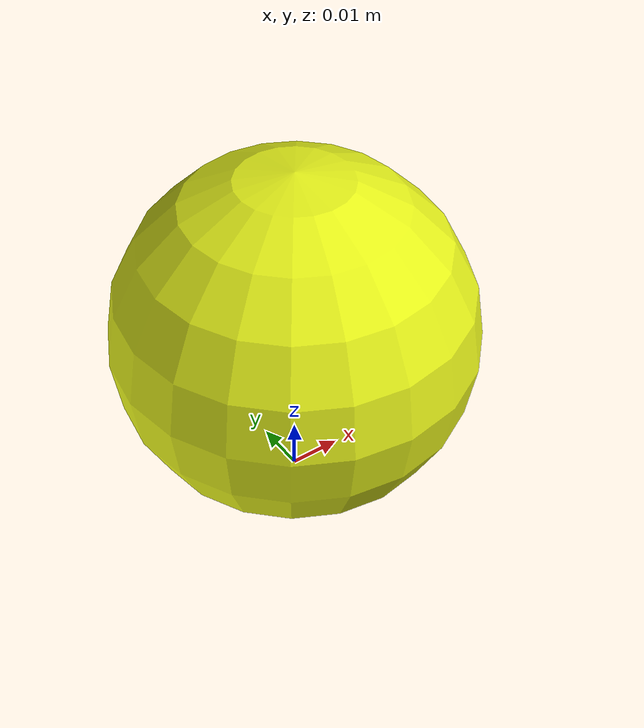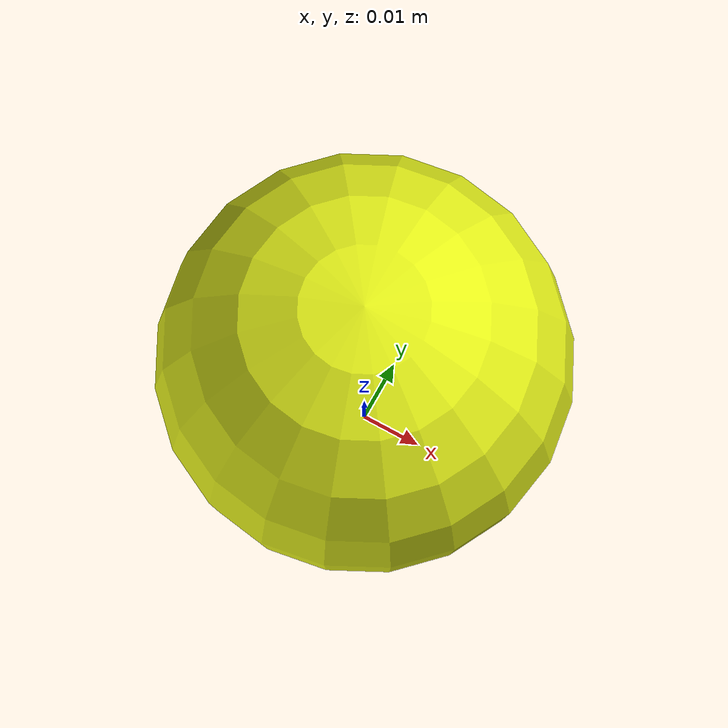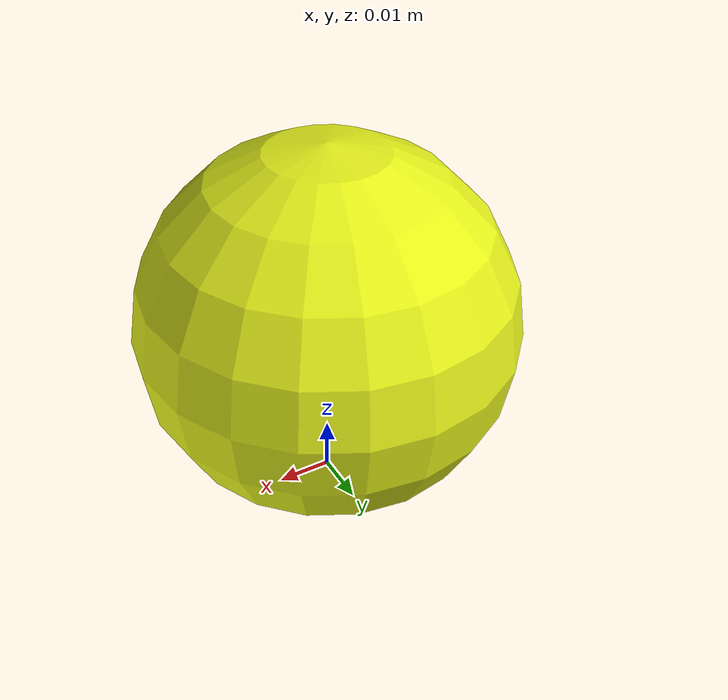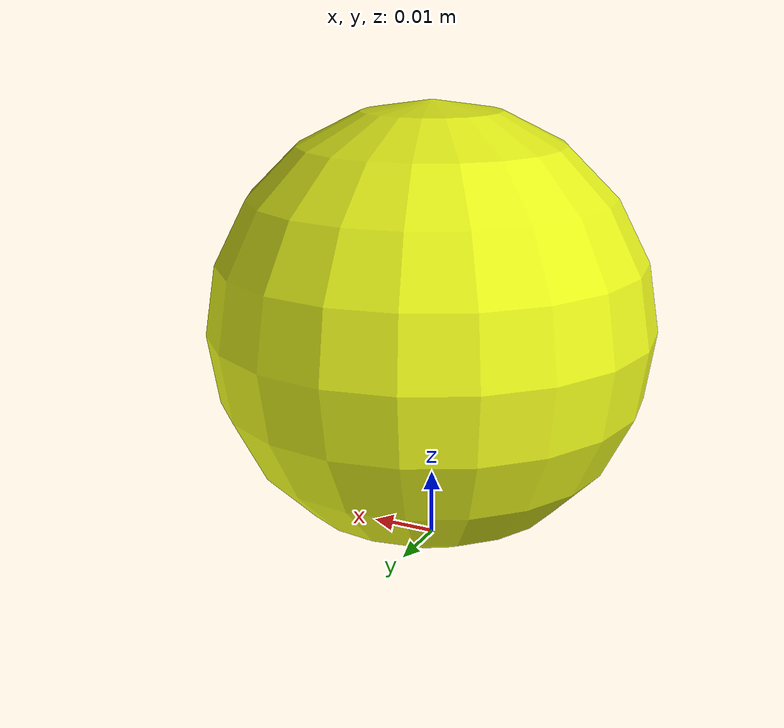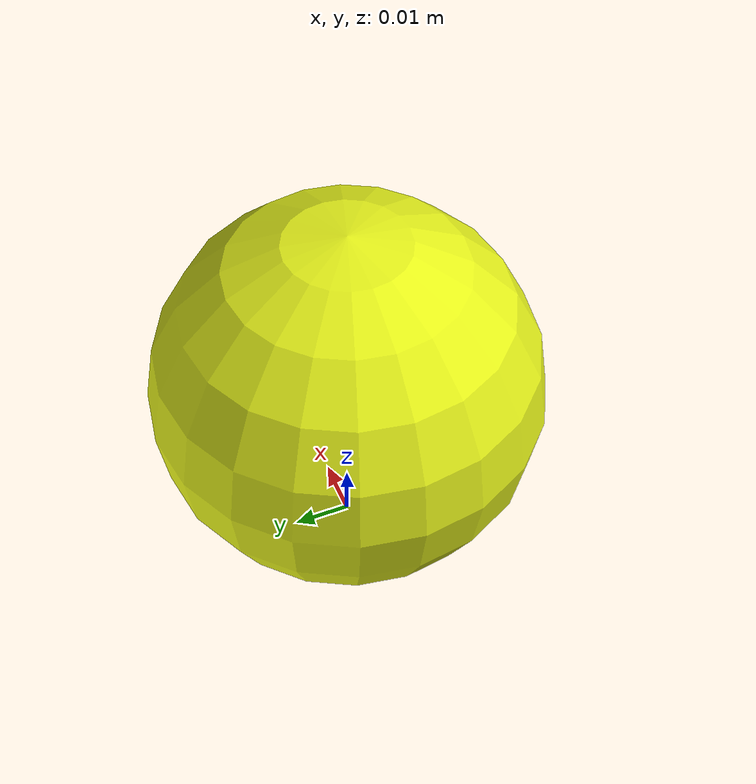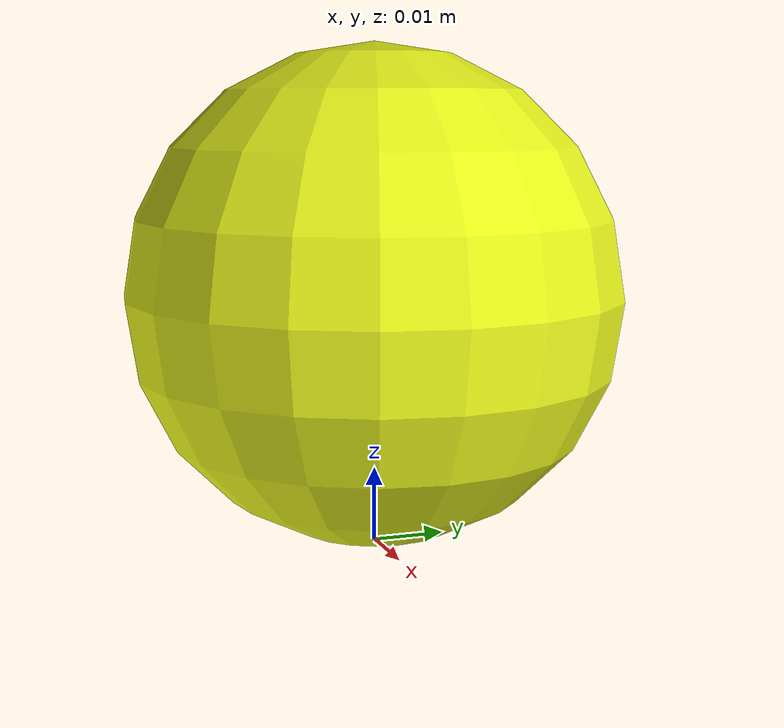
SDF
<?xml version="1.0"?>
<sdf version="1.8">
  <model name="tennis_ball">
    <!-- ITF tennis ball: ~57 g, diameter 67 mm, Cd ~0.55 -->
    <pose>0 0 0.034 0 0 0</pose>
    <link name="ball">
      <inertial>
        <mass>0.057</mass>
        <inertia>
          <ixx>2.55e-05</ixx>
          <iyy>2.55e-05</iyy>
          <izz>2.55e-05</izz>
        </inertia>
      </inertial>
      <collision name="collision">
        <geometry>
          <sphere><radius>0.0335</radius></sphere>
        </geometry>
        <surface>
          <bounce>
            <restitution_coefficient>0.75</restitution_coefficient>
            <threshold>0.05</threshold>
          </bounce>
          <friction>
            <ode>
              <mu>0.6</mu>
              <mu2>0.6</mu2>
            </ode>
          </friction>
          <contact>
            <collide_bitmask>0x02</collide_bitmask>
          </contact>
        </surface>
      </collision>
      <visual name="visual">
        <geometry>
          <sphere><radius>0.0335</radius></sphere>
        </geometry>
        <material>
          <ambient>0.85 0.92 0.12 1</ambient>
          <diffuse>0.90 0.95 0.10 1</diffuse>
          <specular>0.4 0.4 0.3 1</specular>
          <emissive>0.15 0.18 0.02 1</emissive>
        </material>
      </visual>
    </link>
  </model>
</sdf>
